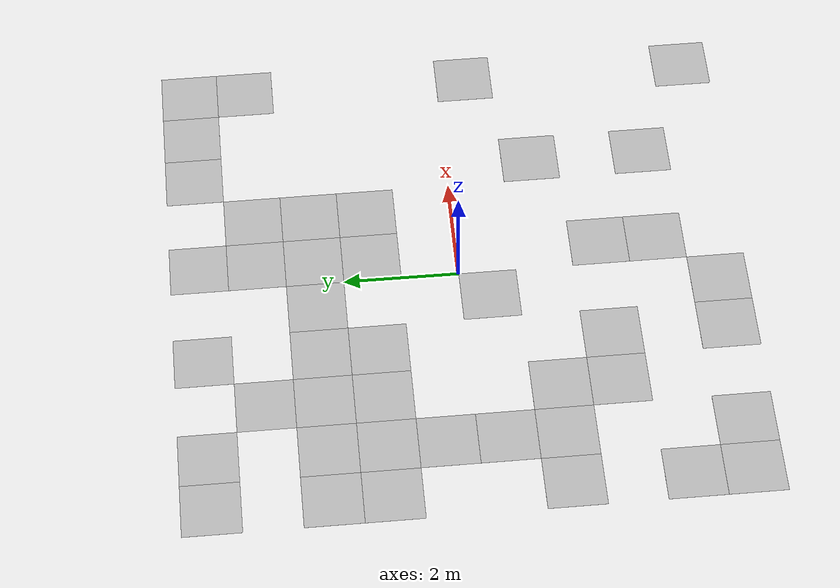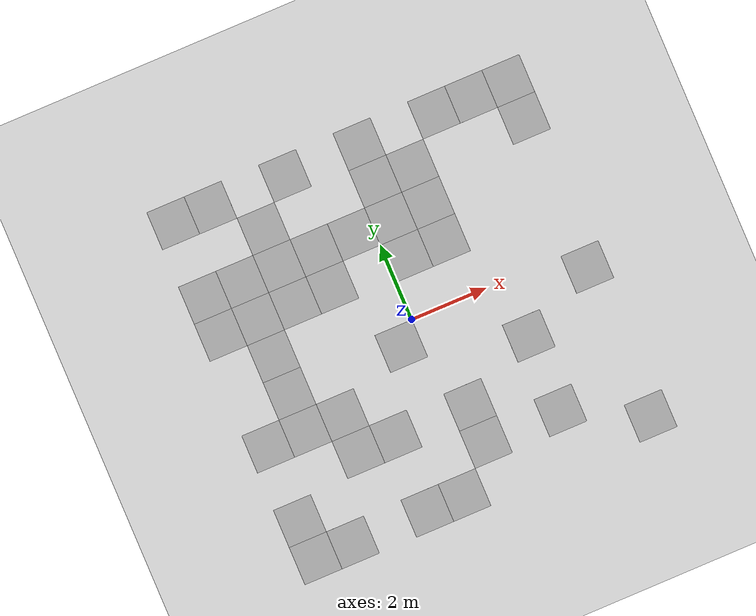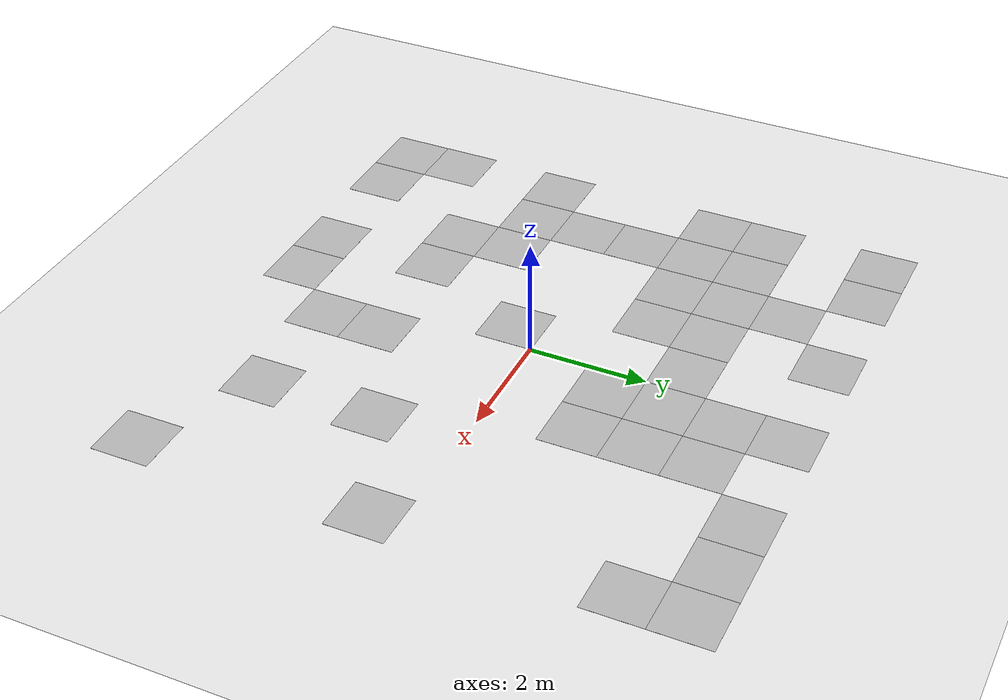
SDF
<?xml version="1.0" ?>
<sdf version="1.7">
  <world name="default">

    <!-- Define the ground plane (mesh) -->
    <model name="ground_plane">
      <static>true</static>
      <link name="link">
        <collision name="collision">
          <geometry>
            <plane>
              <normal>0 0 1</normal>
              <size>20 20</size>
            </plane>
          </geometry>
        </collision>
        <visual name="visual">
          <geometry>
            <plane>
              <normal>0 0 1</normal>
              <size>20 20</size>
            </plane>
          </geometry>
          <material>
            <script>
              <uri>file://media/materials/scripts/gazebo.material</uri>
              <name>Gazebo/White</name>
            </script>
          </material>
        </visual>
      </link>
    </model>

    <model name="exploration_marker_1">
      <static>true</static>
      <link name="link">
        <pose>-4.5 -4.5 0.01 0 0 0</pose>
        <visual name="visual">
          <geometry>
            <plane>
              <normal>0 0 1</normal>
              <size>1 1</size>
            </plane>
          </geometry>
          <material>
            <script>
              <uri>model://my_ground_plane/materials/textures/MyImage.jpg</uri>
              <uri>model://my_ground_plane/materials/scripts/my_ground_plane.material</uri>
              <name>MyGroundPlane/Image</name>
            </script>
          </material>
        </visual>
      </link>
     </model>

    <model name="exploration_marker_2">
      <static>true</static>
      <link name="link">
        <pose>-3.5 -4.5 0.01 0 0 0</pose>
        <visual name="visual">
          <geometry>
            <plane>
              <normal>0 0 1</normal>
              <size>1 1</size>
            </plane>
          </geometry>
          <material>
            <script>
              <uri>model://my_ground_plane/materials/textures/MyImage.jpg</uri>
              <uri>model://my_ground_plane/materials/scripts/my_ground_plane.material</uri>
              <name>MyGroundPlane/Image</name>
            </script>
          </material>
        </visual>
      </link>
     </model>

    <model name="exploration_marker_3">
      <static>true</static>
      <link name="link">
        <pose>-1.5 -4.5 0.01 0 0 0</pose>
        <visual name="visual">
          <geometry>
            <plane>
              <normal>0 0 1</normal>
              <size>1 1</size>
            </plane>
          </geometry>
          <material>
            <script>
              <uri>model://my_ground_plane/materials/textures/MyImage.jpg</uri>
              <uri>model://my_ground_plane/materials/scripts/my_ground_plane.material</uri>
              <name>MyGroundPlane/Image</name>
            </script>
          </material>
        </visual>
      </link>
     </model>

    <model name="exploration_marker_4">
      <static>true</static>
      <link name="link">
        <pose>-0.5 -4.5 0.01 0 0 0</pose>
        <visual name="visual">
          <geometry>
            <plane>
              <normal>0 0 1</normal>
              <size>1 1</size>
            </plane>
          </geometry>
          <material>
            <script>
              <uri>model://my_ground_plane/materials/textures/MyImage.jpg</uri>
              <uri>model://my_ground_plane/materials/scripts/my_ground_plane.material</uri>
              <name>MyGroundPlane/Image</name>
            </script>
          </material>
        </visual>
      </link>
     </model>

    <model name="exploration_marker_5">
      <static>true</static>
      <link name="link">
        <pose>4.5 -4.5 0.01 0 0 0</pose>
        <visual name="visual">
          <geometry>
            <plane>
              <normal>0 0 1</normal>
              <size>1 1</size>
            </plane>
          </geometry>
          <material>
            <script>
              <uri>model://my_ground_plane/materials/textures/MyImage.jpg</uri>
              <uri>model://my_ground_plane/materials/scripts/my_ground_plane.material</uri>
              <name>MyGroundPlane/Image</name>
            </script>
          </material>
        </visual>
      </link>
     </model>

    <model name="exploration_marker_6">
      <static>true</static>
      <link name="link">
        <pose>-4.5 -3.5 0.01 0 0 0</pose>
        <visual name="visual">
          <geometry>
            <plane>
              <normal>0 0 1</normal>
              <size>1 1</size>
            </plane>
          </geometry>
          <material>
            <script>
              <uri>model://my_ground_plane/materials/textures/MyImage.jpg</uri>
              <uri>model://my_ground_plane/materials/scripts/my_ground_plane.material</uri>
              <name>MyGroundPlane/Image</name>
            </script>
          </material>
        </visual>
      </link>
     </model>

    <model name="exploration_marker_7">
      <static>true</static>
      <link name="link">
        <pose>0.5 -3.5 0.01 0 0 0</pose>
        <visual name="visual">
          <geometry>
            <plane>
              <normal>0 0 1</normal>
              <size>1 1</size>
            </plane>
          </geometry>
          <material>
            <script>
              <uri>model://my_ground_plane/materials/textures/MyImage.jpg</uri>
              <uri>model://my_ground_plane/materials/scripts/my_ground_plane.material</uri>
              <name>MyGroundPlane/Image</name>
            </script>
          </material>
        </visual>
      </link>
     </model>

    <model name="exploration_marker_8">
      <static>true</static>
      <link name="link">
        <pose>2.5 -3.5 0.01 0 0 0</pose>
        <visual name="visual">
          <geometry>
            <plane>
              <normal>0 0 1</normal>
              <size>1 1</size>
            </plane>
          </geometry>
          <material>
            <script>
              <uri>model://my_ground_plane/materials/textures/MyImage.jpg</uri>
              <uri>model://my_ground_plane/materials/scripts/my_ground_plane.material</uri>
              <name>MyGroundPlane/Image</name>
            </script>
          </material>
        </visual>
      </link>
     </model>

    <model name="exploration_marker_9">
      <static>true</static>
      <link name="link">
        <pose>-2.5 -2.5 0.01 0 0 0</pose>
        <visual name="visual">
          <geometry>
            <plane>
              <normal>0 0 1</normal>
              <size>1 1</size>
            </plane>
          </geometry>
          <material>
            <script>
              <uri>model://my_ground_plane/materials/textures/MyImage.jpg</uri>
              <uri>model://my_ground_plane/materials/scripts/my_ground_plane.material</uri>
              <name>MyGroundPlane/Image</name>
            </script>
          </material>
        </visual>
      </link>
     </model>

    <model name="exploration_marker_10">
      <static>true</static>
      <link name="link">
        <pose>-1.5 -2.5 0.01 0 0 0</pose>
        <visual name="visual">
          <geometry>
            <plane>
              <normal>0 0 1</normal>
              <size>1 1</size>
            </plane>
          </geometry>
          <material>
            <script>
              <uri>model://my_ground_plane/materials/textures/MyImage.jpg</uri>
              <uri>model://my_ground_plane/materials/scripts/my_ground_plane.material</uri>
              <name>MyGroundPlane/Image</name>
            </script>
          </material>
        </visual>
      </link>
     </model>

    <model name="exploration_marker_11">
      <static>true</static>
      <link name="link">
        <pose>0.5 -2.5 0.01 0 0 0</pose>
        <visual name="visual">
          <geometry>
            <plane>
              <normal>0 0 1</normal>
              <size>1 1</size>
            </plane>
          </geometry>
          <material>
            <script>
              <uri>model://my_ground_plane/materials/textures/MyImage.jpg</uri>
              <uri>model://my_ground_plane/materials/scripts/my_ground_plane.material</uri>
              <name>MyGroundPlane/Image</name>
            </script>
          </material>
        </visual>
      </link>
     </model>

    <model name="exploration_marker_12">
      <static>true</static>
      <link name="link">
        <pose>-4.5 -1.5 0.01 0 0 0</pose>
        <visual name="visual">
          <geometry>
            <plane>
              <normal>0 0 1</normal>
              <size>1 1</size>
            </plane>
          </geometry>
          <material>
            <script>
              <uri>model://my_ground_plane/materials/textures/MyImage.jpg</uri>
              <uri>model://my_ground_plane/materials/scripts/my_ground_plane.material</uri>
              <name>MyGroundPlane/Image</name>
            </script>
          </material>
        </visual>
      </link>
     </model>

    <model name="exploration_marker_13">
      <static>true</static>
      <link name="link">
        <pose>-3.5 -1.5 0.01 0 0 0</pose>
        <visual name="visual">
          <geometry>
            <plane>
              <normal>0 0 1</normal>
              <size>1 1</size>
            </plane>
          </geometry>
          <material>
            <script>
              <uri>model://my_ground_plane/materials/textures/MyImage.jpg</uri>
              <uri>model://my_ground_plane/materials/scripts/my_ground_plane.material</uri>
              <name>MyGroundPlane/Image</name>
            </script>
          </material>
        </visual>
      </link>
     </model>

    <model name="exploration_marker_14">
      <static>true</static>
      <link name="link">
        <pose>-2.5 -1.5 0.01 0 0 0</pose>
        <visual name="visual">
          <geometry>
            <plane>
              <normal>0 0 1</normal>
              <size>1 1</size>
            </plane>
          </geometry>
          <material>
            <script>
              <uri>model://my_ground_plane/materials/textures/MyImage.jpg</uri>
              <uri>model://my_ground_plane/materials/scripts/my_ground_plane.material</uri>
              <name>MyGroundPlane/Image</name>
            </script>
          </material>
        </visual>
      </link>
     </model>

    <model name="exploration_marker_15">
      <static>true</static>
      <link name="link">
        <pose>2.5 -1.5 0.01 0 0 0</pose>
        <visual name="visual">
          <geometry>
            <plane>
              <normal>0 0 1</normal>
              <size>1 1</size>
            </plane>
          </geometry>
          <material>
            <script>
              <uri>model://my_ground_plane/materials/textures/MyImage.jpg</uri>
              <uri>model://my_ground_plane/materials/scripts/my_ground_plane.material</uri>
              <name>MyGroundPlane/Image</name>
            </script>
          </material>
        </visual>
      </link>
     </model>

    <model name="exploration_marker_16">
      <static>true</static>
      <link name="link">
        <pose>-3.5 -0.5 0.01 0 0 0</pose>
        <visual name="visual">
          <geometry>
            <plane>
              <normal>0 0 1</normal>
              <size>1 1</size>
            </plane>
          </geometry>
          <material>
            <script>
              <uri>model://my_ground_plane/materials/textures/MyImage.jpg</uri>
              <uri>model://my_ground_plane/materials/scripts/my_ground_plane.material</uri>
              <name>MyGroundPlane/Image</name>
            </script>
          </material>
        </visual>
      </link>
     </model>

    <model name="exploration_marker_17">
      <static>true</static>
      <link name="link">
        <pose>-0.5 -0.5 0.01 0 0 0</pose>
        <visual name="visual">
          <geometry>
            <plane>
              <normal>0 0 1</normal>
              <size>1 1</size>
            </plane>
          </geometry>
          <material>
            <script>
              <uri>model://my_ground_plane/materials/textures/MyImage.jpg</uri>
              <uri>model://my_ground_plane/materials/scripts/my_ground_plane.material</uri>
              <name>MyGroundPlane/Image</name>
            </script>
          </material>
        </visual>
      </link>
     </model>

    <model name="exploration_marker_18">
      <static>true</static>
      <link name="link">
        <pose>4.5 -0.5 0.01 0 0 0</pose>
        <visual name="visual">
          <geometry>
            <plane>
              <normal>0 0 1</normal>
              <size>1 1</size>
            </plane>
          </geometry>
          <material>
            <script>
              <uri>model://my_ground_plane/materials/textures/MyImage.jpg</uri>
              <uri>model://my_ground_plane/materials/scripts/my_ground_plane.material</uri>
              <name>MyGroundPlane/Image</name>
            </script>
          </material>
        </visual>
      </link>
     </model>

    <model name="exploration_marker_19">
      <static>true</static>
      <link name="link">
        <pose>-3.5 0.5 0.01 0 0 0</pose>
        <visual name="visual">
          <geometry>
            <plane>
              <normal>0 0 1</normal>
              <size>1 1</size>
            </plane>
          </geometry>
          <material>
            <script>
              <uri>model://my_ground_plane/materials/textures/MyImage.jpg</uri>
              <uri>model://my_ground_plane/materials/scripts/my_ground_plane.material</uri>
              <name>MyGroundPlane/Image</name>
            </script>
          </material>
        </visual>
      </link>
     </model>

    <model name="exploration_marker_20">
      <static>true</static>
      <link name="link">
        <pose>-4.5 1.5 0.01 0 0 0</pose>
        <visual name="visual">
          <geometry>
            <plane>
              <normal>0 0 1</normal>
              <size>1 1</size>
            </plane>
          </geometry>
          <material>
            <script>
              <uri>model://my_ground_plane/materials/textures/MyImage.jpg</uri>
              <uri>model://my_ground_plane/materials/scripts/my_ground_plane.material</uri>
              <name>MyGroundPlane/Image</name>
            </script>
          </material>
        </visual>
      </link>
     </model>

    <model name="exploration_marker_21">
      <static>true</static>
      <link name="link">
        <pose>-3.5 1.5 0.01 0 0 0</pose>
        <visual name="visual">
          <geometry>
            <plane>
              <normal>0 0 1</normal>
              <size>1 1</size>
            </plane>
          </geometry>
          <material>
            <script>
              <uri>model://my_ground_plane/materials/textures/MyImage.jpg</uri>
              <uri>model://my_ground_plane/materials/scripts/my_ground_plane.material</uri>
              <name>MyGroundPlane/Image</name>
            </script>
          </material>
        </visual>
      </link>
     </model>

    <model name="exploration_marker_22">
      <static>true</static>
      <link name="link">
        <pose>-2.5 1.5 0.01 0 0 0</pose>
        <visual name="visual">
          <geometry>
            <plane>
              <normal>0 0 1</normal>
              <size>1 1</size>
            </plane>
          </geometry>
          <material>
            <script>
              <uri>model://my_ground_plane/materials/textures/MyImage.jpg</uri>
              <uri>model://my_ground_plane/materials/scripts/my_ground_plane.material</uri>
              <name>MyGroundPlane/Image</name>
            </script>
          </material>
        </visual>
      </link>
     </model>

    <model name="exploration_marker_23">
      <static>true</static>
      <link name="link">
        <pose>-1.5 1.5 0.01 0 0 0</pose>
        <visual name="visual">
          <geometry>
            <plane>
              <normal>0 0 1</normal>
              <size>1 1</size>
            </plane>
          </geometry>
          <material>
            <script>
              <uri>model://my_ground_plane/materials/textures/MyImage.jpg</uri>
              <uri>model://my_ground_plane/materials/scripts/my_ground_plane.material</uri>
              <name>MyGroundPlane/Image</name>
            </script>
          </material>
        </visual>
      </link>
     </model>

    <model name="exploration_marker_24">
      <static>true</static>
      <link name="link">
        <pose>0.5 1.5 0.01 0 0 0</pose>
        <visual name="visual">
          <geometry>
            <plane>
              <normal>0 0 1</normal>
              <size>1 1</size>
            </plane>
          </geometry>
          <material>
            <script>
              <uri>model://my_ground_plane/materials/textures/MyImage.jpg</uri>
              <uri>model://my_ground_plane/materials/scripts/my_ground_plane.material</uri>
              <name>MyGroundPlane/Image</name>
            </script>
          </material>
        </visual>
      </link>
     </model>

    <model name="exploration_marker_25">
      <static>true</static>
      <link name="link">
        <pose>1.5 1.5 0.01 0 0 0</pose>
        <visual name="visual">
          <geometry>
            <plane>
              <normal>0 0 1</normal>
              <size>1 1</size>
            </plane>
          </geometry>
          <material>
            <script>
              <uri>model://my_ground_plane/materials/textures/MyImage.jpg</uri>
              <uri>model://my_ground_plane/materials/scripts/my_ground_plane.material</uri>
              <name>MyGroundPlane/Image</name>
            </script>
          </material>
        </visual>
      </link>
     </model>

    <model name="exploration_marker_26">
      <static>true</static>
      <link name="link">
        <pose>-4.5 2.5 0.01 0 0 0</pose>
        <visual name="visual">
          <geometry>
            <plane>
              <normal>0 0 1</normal>
              <size>1 1</size>
            </plane>
          </geometry>
          <material>
            <script>
              <uri>model://my_ground_plane/materials/textures/MyImage.jpg</uri>
              <uri>model://my_ground_plane/materials/scripts/my_ground_plane.material</uri>
              <name>MyGroundPlane/Image</name>
            </script>
          </material>
        </visual>
      </link>
     </model>

    <model name="exploration_marker_27">
      <static>true</static>
      <link name="link">
        <pose>-3.5 2.5 0.01 0 0 0</pose>
        <visual name="visual">
          <geometry>
            <plane>
              <normal>0 0 1</normal>
              <size>1 1</size>
            </plane>
          </geometry>
          <material>
            <script>
              <uri>model://my_ground_plane/materials/textures/MyImage.jpg</uri>
              <uri>model://my_ground_plane/materials/scripts/my_ground_plane.material</uri>
              <name>MyGroundPlane/Image</name>
            </script>
          </material>
        </visual>
      </link>
     </model>

    <model name="exploration_marker_28">
      <static>true</static>
      <link name="link">
        <pose>-2.5 2.5 0.01 0 0 0</pose>
        <visual name="visual">
          <geometry>
            <plane>
              <normal>0 0 1</normal>
              <size>1 1</size>
            </plane>
          </geometry>
          <material>
            <script>
              <uri>model://my_ground_plane/materials/textures/MyImage.jpg</uri>
              <uri>model://my_ground_plane/materials/scripts/my_ground_plane.material</uri>
              <name>MyGroundPlane/Image</name>
            </script>
          </material>
        </visual>
      </link>
     </model>

    <model name="exploration_marker_29">
      <static>true</static>
      <link name="link">
        <pose>-1.5 2.5 0.01 0 0 0</pose>
        <visual name="visual">
          <geometry>
            <plane>
              <normal>0 0 1</normal>
              <size>1 1</size>
            </plane>
          </geometry>
          <material>
            <script>
              <uri>model://my_ground_plane/materials/textures/MyImage.jpg</uri>
              <uri>model://my_ground_plane/materials/scripts/my_ground_plane.material</uri>
              <name>MyGroundPlane/Image</name>
            </script>
          </material>
        </visual>
      </link>
     </model>

    <model name="exploration_marker_30">
      <static>true</static>
      <link name="link">
        <pose>-0.5 2.5 0.01 0 0 0</pose>
        <visual name="visual">
          <geometry>
            <plane>
              <normal>0 0 1</normal>
              <size>1 1</size>
            </plane>
          </geometry>
          <material>
            <script>
              <uri>model://my_ground_plane/materials/textures/MyImage.jpg</uri>
              <uri>model://my_ground_plane/materials/scripts/my_ground_plane.material</uri>
              <name>MyGroundPlane/Image</name>
            </script>
          </material>
        </visual>
      </link>
     </model>

    <model name="exploration_marker_31">
      <static>true</static>
      <link name="link">
        <pose>0.5 2.5 0.01 0 0 0</pose>
        <visual name="visual">
          <geometry>
            <plane>
              <normal>0 0 1</normal>
              <size>1 1</size>
            </plane>
          </geometry>
          <material>
            <script>
              <uri>model://my_ground_plane/materials/textures/MyImage.jpg</uri>
              <uri>model://my_ground_plane/materials/scripts/my_ground_plane.material</uri>
              <name>MyGroundPlane/Image</name>
            </script>
          </material>
        </visual>
      </link>
     </model>

    <model name="exploration_marker_32">
      <static>true</static>
      <link name="link">
        <pose>1.5 2.5 0.01 0 0 0</pose>
        <visual name="visual">
          <geometry>
            <plane>
              <normal>0 0 1</normal>
              <size>1 1</size>
            </plane>
          </geometry>
          <material>
            <script>
              <uri>model://my_ground_plane/materials/textures/MyImage.jpg</uri>
              <uri>model://my_ground_plane/materials/scripts/my_ground_plane.material</uri>
              <name>MyGroundPlane/Image</name>
            </script>
          </material>
        </visual>
      </link>
     </model>

    <model name="exploration_marker_33">
      <static>true</static>
      <link name="link">
        <pose>-2.5 3.5 0.01 0 0 0</pose>
        <visual name="visual">
          <geometry>
            <plane>
              <normal>0 0 1</normal>
              <size>1 1</size>
            </plane>
          </geometry>
          <material>
            <script>
              <uri>model://my_ground_plane/materials/textures/MyImage.jpg</uri>
              <uri>model://my_ground_plane/materials/scripts/my_ground_plane.material</uri>
              <name>MyGroundPlane/Image</name>
            </script>
          </material>
        </visual>
      </link>
     </model>

    <model name="exploration_marker_34">
      <static>true</static>
      <link name="link">
        <pose>0.5 3.5 0.01 0 0 0</pose>
        <visual name="visual">
          <geometry>
            <plane>
              <normal>0 0 1</normal>
              <size>1 1</size>
            </plane>
          </geometry>
          <material>
            <script>
              <uri>model://my_ground_plane/materials/textures/MyImage.jpg</uri>
              <uri>model://my_ground_plane/materials/scripts/my_ground_plane.material</uri>
              <name>MyGroundPlane/Image</name>
            </script>
          </material>
        </visual>
      </link>
     </model>

    <model name="exploration_marker_35">
      <static>true</static>
      <link name="link">
        <pose>1.5 3.5 0.01 0 0 0</pose>
        <visual name="visual">
          <geometry>
            <plane>
              <normal>0 0 1</normal>
              <size>1 1</size>
            </plane>
          </geometry>
          <material>
            <script>
              <uri>model://my_ground_plane/materials/textures/MyImage.jpg</uri>
              <uri>model://my_ground_plane/materials/scripts/my_ground_plane.material</uri>
              <name>MyGroundPlane/Image</name>
            </script>
          </material>
        </visual>
      </link>
     </model>

    <model name="exploration_marker_36">
      <static>true</static>
      <link name="link">
        <pose>4.5 3.5 0.01 0 0 0</pose>
        <visual name="visual">
          <geometry>
            <plane>
              <normal>0 0 1</normal>
              <size>1 1</size>
            </plane>
          </geometry>
          <material>
            <script>
              <uri>model://my_ground_plane/materials/textures/MyImage.jpg</uri>
              <uri>model://my_ground_plane/materials/scripts/my_ground_plane.material</uri>
              <name>MyGroundPlane/Image</name>
            </script>
          </material>
        </visual>
      </link>
     </model>

    <model name="exploration_marker_37">
      <static>true</static>
      <link name="link">
        <pose>-4.5 4.5 0.01 0 0 0</pose>
        <visual name="visual">
          <geometry>
            <plane>
              <normal>0 0 1</normal>
              <size>1 1</size>
            </plane>
          </geometry>
          <material>
            <script>
              <uri>model://my_ground_plane/materials/textures/MyImage.jpg</uri>
              <uri>model://my_ground_plane/materials/scripts/my_ground_plane.material</uri>
              <name>MyGroundPlane/Image</name>
            </script>
          </material>
        </visual>
      </link>
     </model>

    <model name="exploration_marker_38">
      <static>true</static>
      <link name="link">
        <pose>-3.5 4.5 0.01 0 0 0</pose>
        <visual name="visual">
          <geometry>
            <plane>
              <normal>0 0 1</normal>
              <size>1 1</size>
            </plane>
          </geometry>
          <material>
            <script>
              <uri>model://my_ground_plane/materials/textures/MyImage.jpg</uri>
              <uri>model://my_ground_plane/materials/scripts/my_ground_plane.material</uri>
              <name>MyGroundPlane/Image</name>
            </script>
          </material>
        </visual>
      </link>
     </model>

    <model name="exploration_marker_39">
      <static>true</static>
      <link name="link">
        <pose>-1.5 4.5 0.01 0 0 0</pose>
        <visual name="visual">
          <geometry>
            <plane>
              <normal>0 0 1</normal>
              <size>1 1</size>
            </plane>
          </geometry>
          <material>
            <script>
              <uri>model://my_ground_plane/materials/textures/MyImage.jpg</uri>
              <uri>model://my_ground_plane/materials/scripts/my_ground_plane.material</uri>
              <name>MyGroundPlane/Image</name>
            </script>
          </material>
        </visual>
      </link>
     </model>

    <model name="exploration_marker_40">
      <static>true</static>
      <link name="link">
        <pose>0.5 4.5 0.01 0 0 0</pose>
        <visual name="visual">
          <geometry>
            <plane>
              <normal>0 0 1</normal>
              <size>1 1</size>
            </plane>
          </geometry>
          <material>
            <script>
              <uri>model://my_ground_plane/materials/textures/MyImage.jpg</uri>
              <uri>model://my_ground_plane/materials/scripts/my_ground_plane.material</uri>
              <name>MyGroundPlane/Image</name>
            </script>
          </material>
        </visual>
      </link>
     </model>

    <model name="exploration_marker_41">
      <static>true</static>
      <link name="link">
        <pose>2.5 4.5 0.01 0 0 0</pose>
        <visual name="visual">
          <geometry>
            <plane>
              <normal>0 0 1</normal>
              <size>1 1</size>
            </plane>
          </geometry>
          <material>
            <script>
              <uri>model://my_ground_plane/materials/textures/MyImage.jpg</uri>
              <uri>model://my_ground_plane/materials/scripts/my_ground_plane.material</uri>
              <name>MyGroundPlane/Image</name>
            </script>
          </material>
        </visual>
      </link>
     </model>

    <model name="exploration_marker_42">
      <static>true</static>
      <link name="link">
        <pose>3.5 4.5 0.01 0 0 0</pose>
        <visual name="visual">
          <geometry>
            <plane>
              <normal>0 0 1</normal>
              <size>1 1</size>
            </plane>
          </geometry>
          <material>
            <script>
              <uri>model://my_ground_plane/materials/textures/MyImage.jpg</uri>
              <uri>model://my_ground_plane/materials/scripts/my_ground_plane.material</uri>
              <name>MyGroundPlane/Image</name>
            </script>
          </material>
        </visual>
      </link>
     </model>

    <model name="exploration_marker_43">
      <static>true</static>
      <link name="link">
        <pose>4.5 4.5 0.01 0 0 0</pose>
        <visual name="visual">
          <geometry>
            <plane>
              <normal>0 0 1</normal>
              <size>1 1</size>
            </plane>
          </geometry>
          <material>
            <script>
              <uri>model://my_ground_plane/materials/textures/MyImage.jpg</uri>
              <uri>model://my_ground_plane/materials/scripts/my_ground_plane.material</uri>
              <name>MyGroundPlane/Image</name>
            </script>
          </material>
        </visual>
      </link>
     </model>

  </world>
</sdf>
